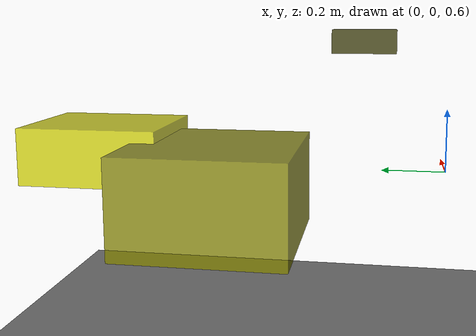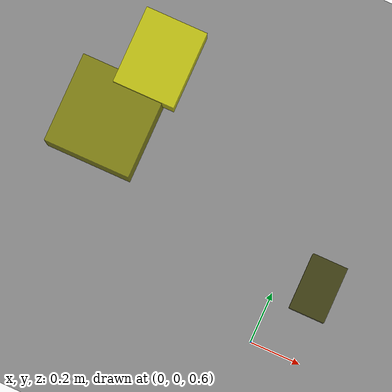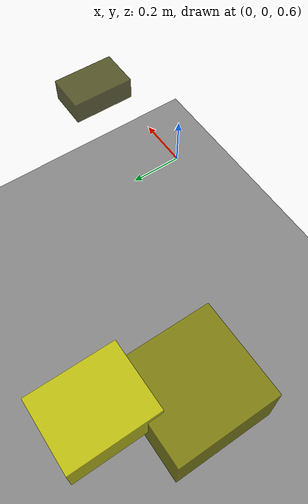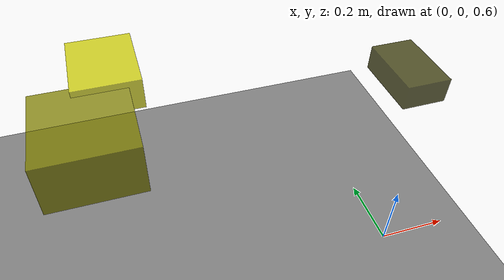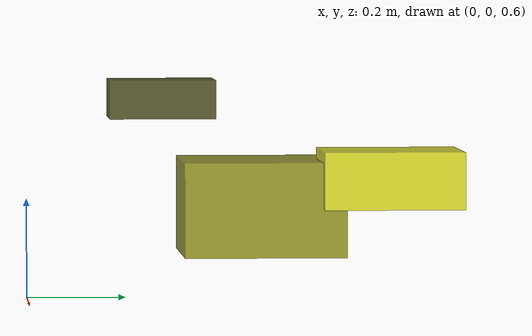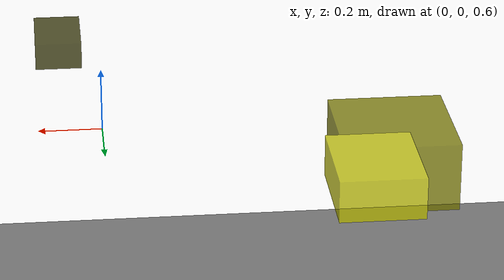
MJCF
<?xml version="1.0"?>
<mujoco model="obstacle_scene">
  <compiler angle="radian" coordinate="local"/>
  <option timestep="0.001" gravity="0 0 -9.81"/>

  <asset>
    <material name="obstacle_mat" rgba="0.8 0.8 0.0 0.8"/>
    <material name="ground_mat" rgba="0.5 0.5 0.5 1"/>
  </asset>

  <worldbody>
    <!-- Ground plane -->
    <geom name="ground" type="plane" size="3 3 0.1" material="ground_mat"/>

    <!-- Obstacles -->
    <body name="obstacle_0" pos="0.133372 0.264679 1.008288">
      <geom name="obs_0" type="box" size="0.066667 0.105187 0.038407" rgba="0.2 0.2 0.0 0.8"/>
    </body>
    <body name="obstacle_1" pos="-0.826926 0.536263 0.731500">
      <geom name="obs_1" type="box" size="0.169166 0.174724 0.102205" rgba="0.5 0.5 0.0 0.8"/>
    </body>
    <body name="obstacle_2" pos="-0.731465 0.810866 0.796173">
      <geom name="obs_2" type="box" size="0.121680 0.151290 0.061692" rgba="0.8 0.8 0.0 0.8"/>
    </body>
  </worldbody>
</mujoco>
